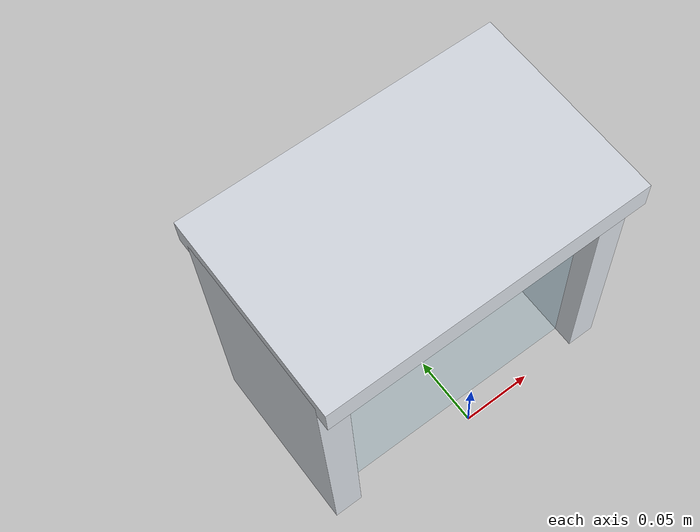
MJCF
<?xml version="1.0" encoding="utf-8"?>
<mujoco model="clean_room_pass_box">
  <compiler angle="radian" autolimits="true"/>
  <default>
    <default class="body"><geom contype="1" conaffinity="1"/></default>
  </default>
  <worldbody>
    <body name="base">
      <geom type="box" size="0.10 0.01 0.10" pos="0 0.12 0.10" rgba="0.85 0.87 0.9 1" class="body"/>
      <geom type="box" size="0.01 0.06 0.10" pos="-0.10 0.06 0.10" rgba="0.85 0.87 0.9 1" class="body"/>
      <geom type="box" size="0.01 0.06 0.10" pos="0.10 0.06 0.10" rgba="0.85 0.87 0.9 1" class="body"/>
      <geom type="box" size="0.11 0.07 0.01" pos="0 0.06 0.20" rgba="0.85 0.87 0.9 1" class="body"/>
      <body name="door" pos="-0.10 0.02 0.10">
        <joint name="door_joint" type="hinge" axis="0 0 1" range="0 1.8" damping="0.6" frictionloss="0.5"/>
  <geom type="box" size="0.10 0.005 0.10" pos="0.10 0 0" rgba="0.7 0.85 0.9 0.4" class="body"/>
      </body>
    </body>
  </worldbody>
</mujoco>
